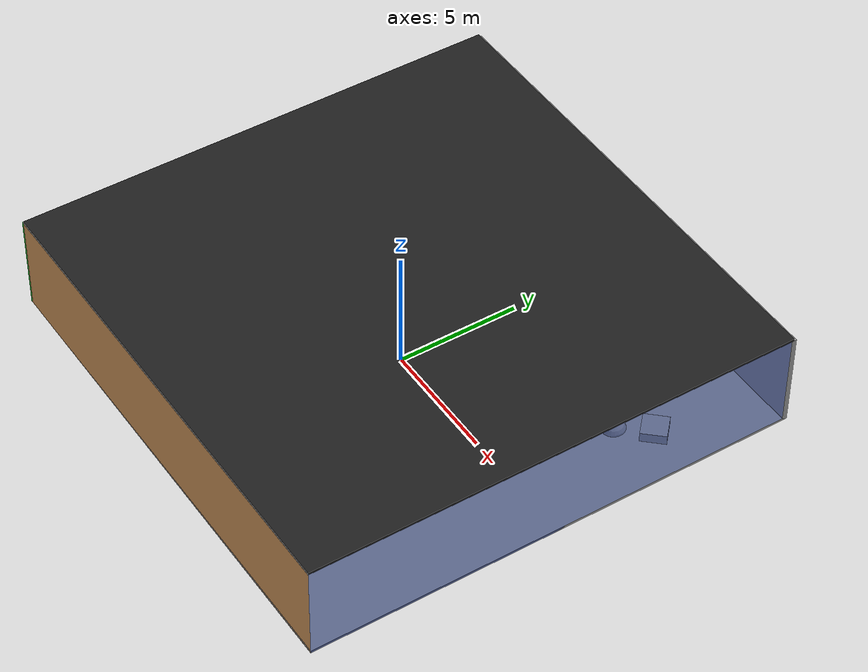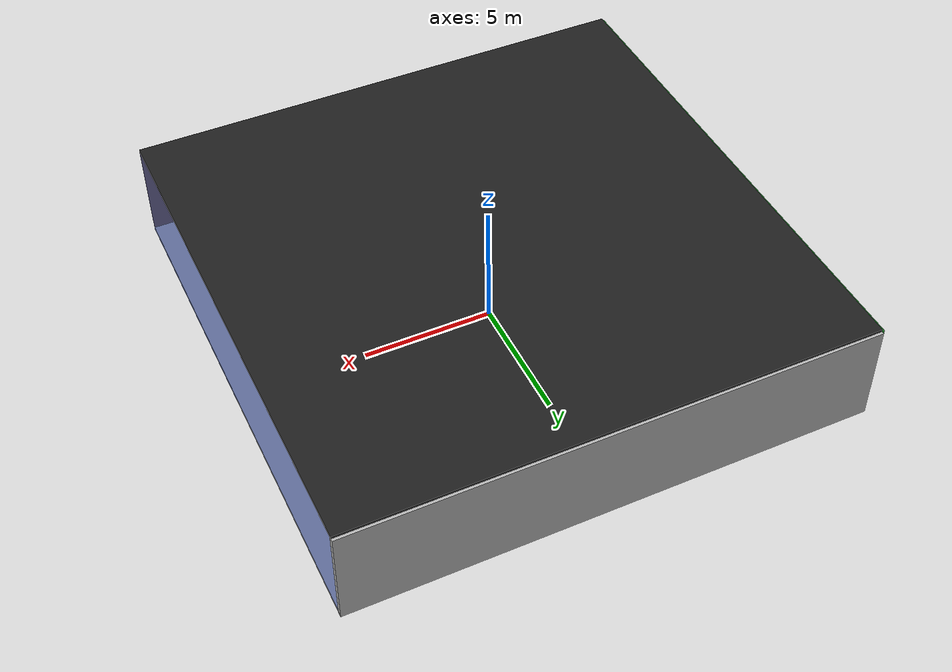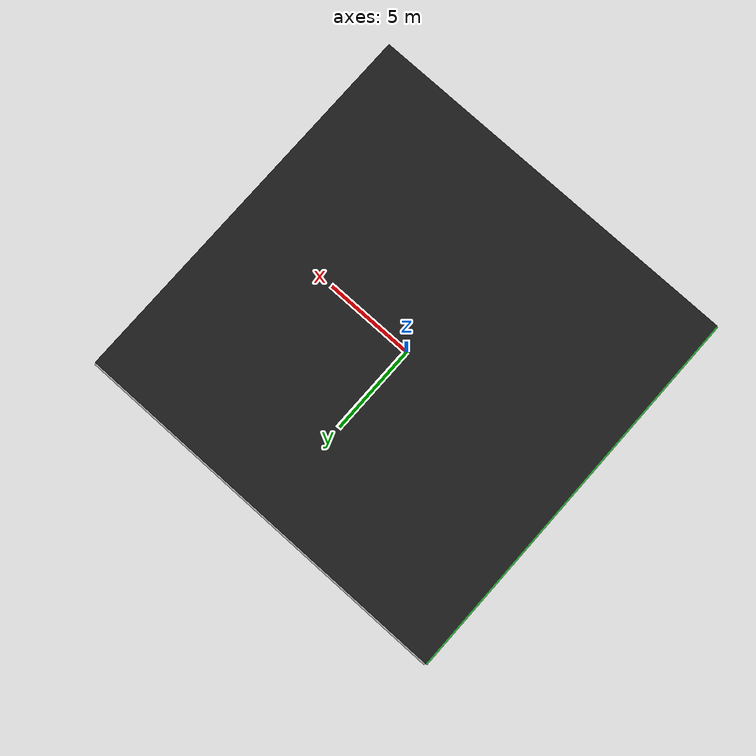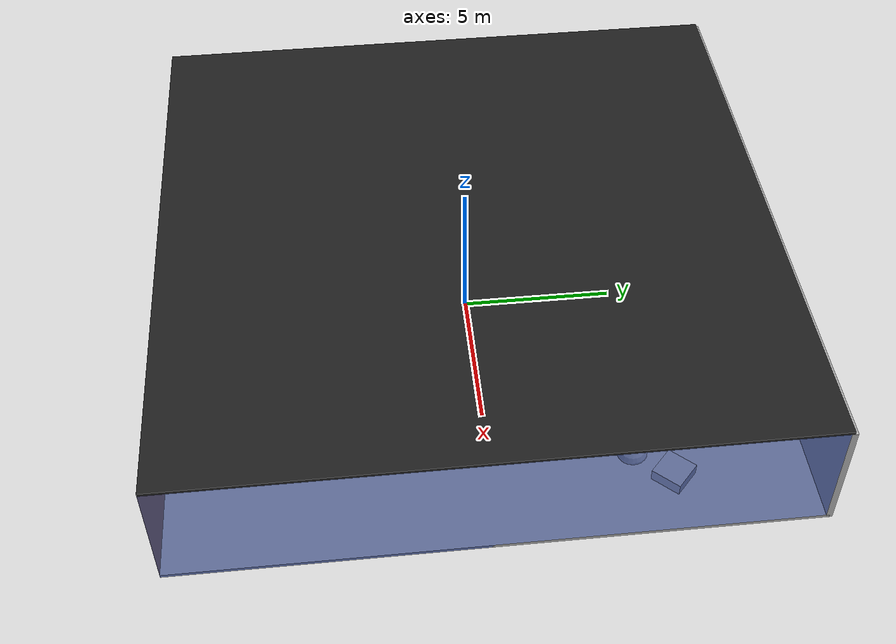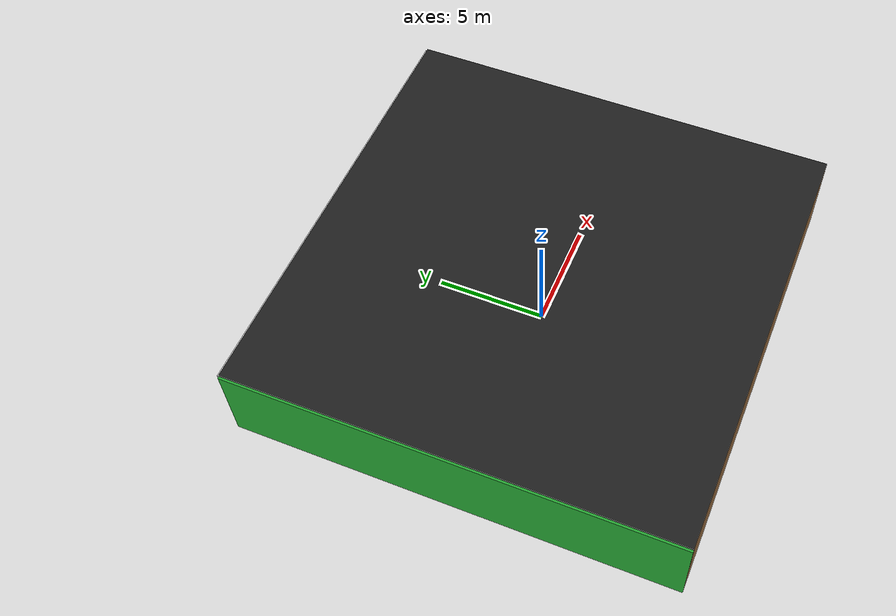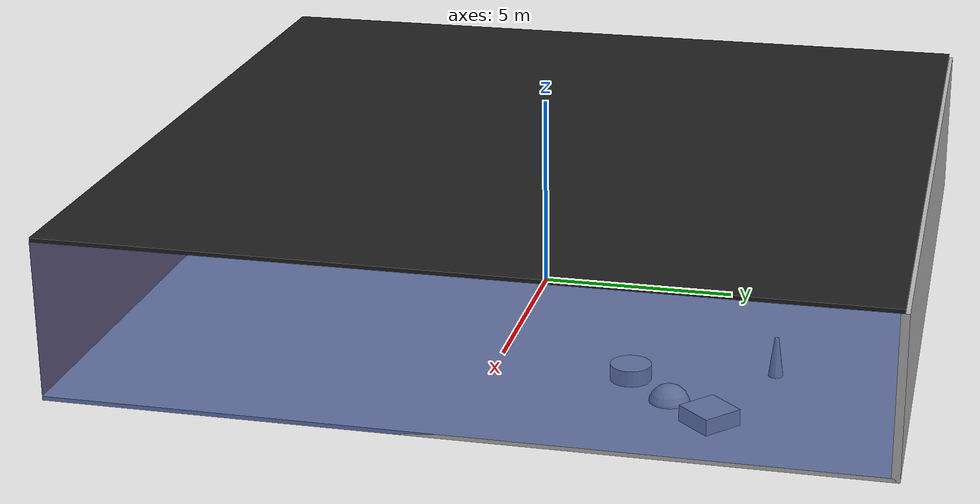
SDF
<sdf version="1.4">
 <world name="default">
  <physics type="ode">
   <max_step_size>0.001</max_step_size>
   <real_time_factor>1</real_time_factor>
   <real_time_update_rate>1000</real_time_update_rate>
   <gravity>0 0 -9.8</gravity>
  </physics>
  <scene><ambient>0.4 0.4 0.4 1</ambient><background>0.7 0.7 0.7 1</background><shadows>1</shadows></scene>
  <model name="Surrounding">
   <static>1</static>
   <link name="Ceiling">
    <collision name="Ceiling_Collision"><geometry><box><size>20 20 0.1</size></box></geometry></collision>
    <visual name="Ceiling_Visual">
     <geometry><box><size>20 20 0.1</size></box></geometry>
     <material>
      <script><uri>file://media/materials/scripts/gazebo.material</uri><name>Gazebo/FlatBlack</name></script>
     </material>
    </visual>
    <pose>0 0 4.05 0 0 0</pose>
   </link>
   <link name="Wall_South">
    <collision name="Wall_South_Collision">
     <geometry><box><size>20 0 4</size></box></geometry>
     <pose>0 0 2 0 -0 0</pose>
    </collision>
    <visual name="Wall_South_Visual">
     <pose>0 0 2 0 -0 0</pose>
     <geometry><box><size>20 0 4</size></box></geometry>
     <material>
      <script><uri>file://media/materials/scripts/gazebo.material</uri><name>Gazebo/WoodPallet</name></script>
     </material>
    </visual>
    <velocity_decay><linear>0</linear><angular>0</angular></velocity_decay>
    <pose>0 -10 0 0 -0 0</pose>
   </link>
   <link name="Wall_East">
    <collision name="Wall_21_Collision">
     <geometry><box><size>20 0 4</size></box></geometry>
     <pose>0 0 2 0 -0 0</pose>
    </collision>
    <visual name="Wall_21_Visual">
     <pose>0 0 2 0 -0 0</pose>
     <geometry><box><size>20 0 4</size></box></geometry>
     <material>
      <script><uri>file://media/materials/scripts/gazebo.material</uri><name>Gazebo/BlueTransparent</name></script>
     </material>
    </visual>
    <velocity_decay><linear>0</linear><angular>0</angular></velocity_decay>
    <pose>10 0 0 0 -0 1.5708</pose>
   </link>
   <link name="Wall_North">
    <collision name="Wall_22_Collision">
     <geometry><box><size>20 0.2 4</size></box></geometry>
     <pose>0 0 2 0 -0 0</pose>
    </collision>
    <visual name="Wall_22_Visual">
     <pose>0 0 2 0 -0 0</pose>
     <geometry><box><size>20 0.2 4</size></box></geometry>
     <material>
      <script><uri>file://media/materials/scripts/gazebo.material</uri><name>Gazebo/LightOn</name></script>
     </material>
    </visual>
    <velocity_decay><linear>0</linear><angular>0</angular></velocity_decay>
    <pose>0 10 0 0 -0 0</pose>
   </link>
   <link name="Wall_West">
    <collision name="Wall_23_Collision">
     <geometry><box><size>20 0.2 4</size></box></geometry>
     <pose>0 0 2 0 -0 0</pose>
    </collision>
    <visual name="Wall_23_Visual">
     <pose>0 0 2 0 -0 0</pose>
     <geometry><box><size>20 0.2 4</size></box></geometry>
     <material>
      <script><uri>file://media/materials/scripts/gazebo.material</uri><name>Gazebo/Green</name></script>
     </material>
    </visual>
    <velocity_decay><linear>0</linear><angular>0</angular></velocity_decay>
    <pose>-10 0 0 0 0 -1.5708</pose>
   </link>
   <link name="Ground_link">
    <collision name="collision">
     <pose>0 0 .05 0 -0 0</pose>
     <geometry><box><size>20 20 0.1</size></box></geometry>
    </collision>
    <visual name="visual">
     <pose>0 0 .05 0 -0 0</pose>
     <geometry><box><size>20 20 0.1</size></box></geometry>
     <material>
      <script><uri>file://media/materials/scripts/gazebo.material</uri><name>Gazebo/PioneerBody</name></script>
     </material>
    </visual>
   </link>
   <static>1</static>
  </model>
  <spherical_coordinates>
   <surface_model>EARTH_WGS84</surface_model>
   <latitude_deg>0</latitude_deg>
   <longitude_deg>0</longitude_deg>
   <elevation>0</elevation>
   <heading_deg>0</heading_deg>
  </spherical_coordinates>
  <light name="lightball_0" type="diffuse">
   <diffuse>0.8 0.8 0.8 1</diffuse>
   <specular>0.2 0.2 0.2 1</specular>
   <attenuation>
    <range>100</range>
    <constant>0.7</constant>
    <linear>0.01</linear>
    <quadratic>0.001</quadratic>
   </attenuation>
   <direction>-0.5 0.1 -0.9</direction>
   <pose>-7.69319599687 -1.09563265744 3.21627281201 0 0 0</pose>
  </light>
  <light name="lightball_1" type="diffuse">
   <diffuse>0.8 0.8 0.8 1</diffuse>
   <specular>0.2 0.2 0.2 1</specular>
   <attenuation>
    <range>100</range>
    <constant>0.7</constant>
    <linear>0.01</linear>
    <quadratic>0.001</quadratic>
   </attenuation>
   <direction>-0.5 0.1 -0.9</direction>
   <pose>-5.134424482 0.368083861356 2.30908101086 0 0 0</pose>
  </light>
  <light name="lightball_2" type="diffuse">
   <diffuse>0.8 0.8 0.8 1</diffuse>
   <specular>0.2 0.2 0.2 1</specular>
   <attenuation>
    <range>100</range>
    <constant>0.7</constant>
    <linear>0.01</linear>
    <quadratic>0.001</quadratic>
   </attenuation>
   <direction>-0.5 0.1 -0.9</direction>
   <pose>8.51606132221 -2.6992071031 2.5530080985 0 0 0</pose>
  </light>
  <light name="lightball_3" type="diffuse">
   <diffuse>0.8 0.8 0.8 1</diffuse>
   <specular>0.2 0.2 0.2 1</specular>
   <attenuation>
    <range>100</range>
    <constant>0.7</constant>
    <linear>0.01</linear>
    <quadratic>0.001</quadratic>
   </attenuation>
   <direction>-0.5 0.1 -0.9</direction>
   <pose>6.89909385507 3.92125737187 1.72063905215 0 0 0</pose>
  </light>
  <light name="lightball_4" type="diffuse">
   <diffuse>0.8 0.8 0.8 1</diffuse>
   <specular>0.2 0.2 0.2 1</specular>
   <attenuation>
    <range>100</range>
    <constant>0.7</constant>
    <linear>0.01</linear>
    <quadratic>0.001</quadratic>
   </attenuation>
   <direction>-0.5 0.1 -0.9</direction>
   <pose>9.58924402107 -5.67605847737 2.54303477965 0 0 0</pose>
  </light>
  <light name="lightball_5" type="diffuse">
   <diffuse>0.8 0.8 0.8 1</diffuse>
   <specular>0.2 0.2 0.2 1</specular>
   <attenuation>
    <range>100</range>
    <constant>0.7</constant>
    <linear>0.01</linear>
    <quadratic>0.001</quadratic>
   </attenuation>
   <direction>-0.5 0.1 -0.9</direction>
   <pose>1.3787296954 2.30390684322 0.586108913143 0 0 0</pose>
  </light>
  <light name="lightball_6" type="diffuse">
   <diffuse>0.8 0.8 0.8 1</diffuse>
   <specular>0.2 0.2 0.2 1</specular>
   <attenuation>
    <range>100</range>
    <constant>0.7</constant>
    <linear>0.01</linear>
    <quadratic>0.001</quadratic>
   </attenuation>
   <direction>-0.5 0.1 -0.9</direction>
   <pose>-0.0712329196664 -6.59106294695 1.77549662915 0 0 0</pose>
  </light>
  <light name="lightball_7" type="diffuse">
   <diffuse>0.8 0.8 0.8 1</diffuse>
   <specular>0.2 0.2 0.2 1</specular>
   <attenuation>
    <range>100</range>
    <constant>0.7</constant>
    <linear>0.01</linear>
    <quadratic>0.001</quadratic>
   </attenuation>
   <direction>-0.5 0.1 -0.9</direction>
   <pose>1.88881168895 6.72122154693 3.52838865946 0 0 0</pose>
  </light>
  <light name="lightball_8" type="diffuse">
   <diffuse>0.8 0.8 0.8 1</diffuse>
   <specular>0.2 0.2 0.2 1</specular>
   <attenuation>
    <range>100</range>
    <constant>0.7</constant>
    <linear>0.01</linear>
    <quadratic>0.001</quadratic>
   </attenuation>
   <direction>-0.5 0.1 -0.9</direction>
   <pose>3.82792711934 -0.239026892308 3.70396715326 0 0 0</pose>
  </light>
  <light name="lightball_9" type="diffuse">
   <diffuse>0.8 0.8 0.8 1</diffuse>
   <specular>0.2 0.2 0.2 1</specular>
   <attenuation>
    <range>100</range>
    <constant>0.7</constant>
    <linear>0.01</linear>
    <quadratic>0.001</quadratic>
   </attenuation>
   <direction>-0.5 0.1 -0.9</direction>
   <pose>-0.789398160854 -5.10985774398 1.91639739948 0 0 0</pose>
  </light>
  <light name="lightball_10" type="diffuse">
   <diffuse>0.8 0.8 0.8 1</diffuse>
   <specular>0.2 0.2 0.2 1</specular>
   <attenuation>
    <range>100</range>
    <constant>0.7</constant>
    <linear>0.01</linear>
    <quadratic>0.001</quadratic>
   </attenuation>
   <direction>-0.5 0.1 -0.9</direction>
   <pose>9.85109694923 2.02443915458 0.776130265026 0 0 0</pose>
  </light>
  <include>
   <uri>model://robocup_3Dsim_goal</uri>
   <pose>-6.9142121246 4.36345886665 0 0 0 1.71413114601</pose>
  </include>
  <include><uri>model://table</uri><pose>-1.38672697992 4.35657432367 0 0 0 0.205190981123</pose></include>
  <include>
   <uri>model://construction_cone</uri>
   <pose>5.12005013971 6.78890810489 0 0 0 0.65356816112</pose>
  </include>
  <include>
   <uri>model://textured_shapes</uri>
   <pose>7.06244310335 4.50853709582 0 0 0 2.39588948136</pose>
  </include>
 </world>
</sdf>

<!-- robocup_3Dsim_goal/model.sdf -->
<sdf version="1.5">
  <model name="robocup_3d_goal">
    <static>true</static>
    <link name="left_post">
      <pose>0 1.05 0.45 0 0 0</pose>
      <collision name="collision">
        <geometry>
          <cylinder>
            <radius>0.05</radius>
            <length>0.9</length>
          </cylinder>
        </geometry>
      </collision>
      <visual name="visual">
        <geometry>
          <cylinder>
            <radius>0.05</radius>
            <length>0.9</length>
          </cylinder>
        </geometry>
        <material>
          <script>
            <uri>file://media/materials/scripts/gazebo.material</uri>
            <name>Gazebo/ZincYellow</name>
          </script>
        </material>
      </visual>
    </link>
    <link name="left_support_horiz_lower">
      <pose>0.30 1.05 0.01 0 0 0</pose>
      <collision name="collision">
        <geometry>
          <box>
            <size>0.50 0.02 0.02</size>
          </box>
        </geometry>
      </collision>
      <visual name="visual">
        <geometry>
          <box>
            <size>0.50 0.02 0.02</size>
          </box>
        </geometry>
        <material>
          <script>
            <uri>file://media/materials/scripts/gazebo.material</uri>
            <name>Gazebo/White</name>
          </script>
        </material>
      </visual>
    </link>
    <link name="left_support_horiz_upper">
      <pose>0.30 1.05 0.79 0 0 0</pose>
      <collision name="collision">
        <geometry>
          <box>
            <size>0.50 0.02 0.02</size>
          </box>
        </geometry>
      </collision>
      <visual name="visual">
        <geometry>
          <box>
            <size>0.50 0.02 0.02</size>
          </box>
        </geometry>
        <material>
          <script>
            <uri>file://media/materials/scripts/gazebo.material</uri>
            <name>Gazebo/White</name>
          </script>
        </material>
      </visual>
    </link>
    <link name="left_support_vertical">
      <pose>0.56 1.05 0.4 0 1.5708 0</pose>
      <collision name="collision">
        <geometry>
          <box>
            <size>0.80 0.02 0.02</size>
          </box>
        </geometry>
      </collision>
      <visual name="visual">
        <geometry>
          <box>
            <size>0.80 0.02 0.02</size>
          </box>
        </geometry>
        <material>
          <script>
            <uri>file://media/materials/scripts/gazebo.material</uri>
            <name>Gazebo/White</name>
          </script>
        </material>
      </visual>
    </link>
    <link name="right_support_horiz_lower">
      <pose>0.30 -1.05 0.01 0 0 0</pose>
      <collision name="collision">
        <geometry>
          <box>
            <size>0.50 0.02 0.02</size>
          </box>
        </geometry>
      </collision>
      <visual name="visual">
        <geometry>
          <box>
            <size>0.50 0.02 0.02</size>
          </box>
        </geometry>
        <material>
          <script>
            <uri>file://media/materials/scripts/gazebo.material</uri>
            <name>Gazebo/White</name>
          </script>
        </material>
      </visual>
    </link>
    <link name="right_support_horiz_upper">
      <pose>0.30 -1.05 0.79 0 0 0</pose>
      <collision name="collision">
        <geometry>
          <box>
            <size>0.50 0.02 0.02</size>
          </box>
        </geometry>
      </collision>
      <visual name="visual">
        <geometry>
          <box>
            <size>0.50 0.02 0.02</size>
          </box>
        </geometry>
        <material>
          <script>
            <uri>file://media/materials/scripts/gazebo.material</uri>
            <name>Gazebo/White</name>
          </script>
        </material>
      </visual>
    </link>
    <link name="right_support_vertical">
      <pose>0.56 -1.05 0.4 0 1.5708 0</pose>
      <collision name="collision">
        <geometry>
          <box>
            <size>0.80 0.02 0.02</size>
          </box>
        </geometry>
      </collision>
      <visual name="visual">
        <geometry>
          <box>
            <size>0.80 0.02 0.02</size>
          </box>
        </geometry>
        <material>
          <script>
            <uri>file://media/materials/scripts/gazebo.material</uri>
            <name>Gazebo/White</name>
          </script>
        </material>
      </visual>
    </link>
    <link name="center_support_horiz_lower">
      <pose>0.56 0 0.01 0 1.5708 0</pose>
      <collision name="collision">
        <geometry>
          <box>
            <size>0.02 2.08 0.02</size>
          </box>
        </geometry>
      </collision>
      <visual name="visual">
        <geometry>
          <box>
            <size>0.02 2.08 0.02</size>
          </box>
        </geometry>
        <material>
          <script>
            <uri>file://media/materials/scripts/gazebo.material</uri>
            <name>Gazebo/White</name>
          </script>
        </material>
      </visual>
    </link>
    <link name="center_support_horiz_upper">
      <pose>0.56 0 0.79 0 1.5708 0</pose>
      <collision name="collision">
        <geometry>
          <box>
            <size>0.02 2.08 0.02</size>
          </box>
        </geometry>
      </collision>
      <visual name="visual">
        <geometry>
          <box>
            <size>0.02 2.08 0.02</size>
          </box>
        </geometry>
        <material>
          <script>
            <uri>file://media/materials/scripts/gazebo.material</uri>
            <name>Gazebo/White</name>
          </script>
        </material>
      </visual>
    </link>
    <link name="right_post">
      <pose>0 -1.05 0.45 0 0 0</pose>
      <collision name="collision">
        <geometry>
          <cylinder>
            <radius>0.05</radius>
            <length>0.9</length>
          </cylinder>
        </geometry>
      </collision>
      <visual name="visual">
        <geometry>
          <cylinder>
            <radius>0.05</radius>
            <length>0.9</length>
          </cylinder>
        </geometry>
        <material>
          <script>
            <uri>file://media/materials/scripts/gazebo.material</uri>
            <name>Gazebo/ZincYellow</name>
          </script>
        </material>
      </visual>
    </link>
    <link name="crossbar">
      <pose>0 0 0.85 1.57 1.57 0</pose>
      <collision name="collision">
        <geometry>
          <cylinder>
            <radius>0.05</radius>
            <length>2.0</length>
          </cylinder>
        </geometry>
      </collision>
      <visual name="visual">
        <geometry>
          <cylinder>
            <radius>0.05</radius>
            <length>2.0</length>
          </cylinder>
        </geometry>
        <material>
          <script>
            <uri>file://media/materials/scripts/gazebo.material</uri>
            <name>Gazebo/ZincYellow</name>
          </script>
        </material>
      </visual>
    </link>
    <link name="center_net">
      <pose>0.56 0 0.40 0 0 0</pose>
      <collision name="collision">
        <geometry>
          <box>
            <size>0.01 2.1 0.80</size>
          </box>
        </geometry>
      </collision>
      <visual name="visual">
        <geometry>
          <box>
            <size>0.01 2.1 0.80</size>
          </box>
        </geometry>
        <material>
          <script>
            <uri>model://../model_source/models/robocup09_spl_field/materials/scripts/</uri>
            <uri>model://../model_source/models/robocup09_spl_field/materials/textures/</uri>
            <name>RoboCup/Net</name>
          </script>
        </material>
      </visual>
    </link>
    <link name="left_net">
      <pose>0.30 1.05 0.40 0 0 0</pose>
      <collision name="collision">
        <geometry>
          <box>
            <size>0.50 0.01 0.76</size>
          </box>
        </geometry>
      </collision>
      <visual name="visual">
        <geometry>
          <box>
            <size>0.50 0.01 0.76</size>
          </box>
        </geometry>
        <material>
          <script>
            <uri>model://../model_source/models/robocup09_spl_field/materials/scripts/</uri>
            <uri>model://../model_source/models/robocup09_spl_field/materials/textures/</uri>
            <name>RoboCup/Net</name>
          </script>
        </material>
      </visual>
    </link>
    <link name="right_net">
      <pose>0.30 -1.05 0.40 0 0 0</pose>
      <collision name="collision">
        <geometry>
          <box>
            <size>0.50 0.01 0.76</size>
          </box>
        </geometry>
      </collision>
      <visual name="visual">
        <geometry>
          <box>
            <size>0.50 0.01 0.76</size>
          </box>
        </geometry>
        <material>
          <script>
            <uri>model://../model_source/models/robocup09_spl_field/materials/scripts/</uri>
            <uri>model://../model_source/models/robocup09_spl_field/materials/textures/</uri>
            <name>RoboCup/Net</name>
          </script>
        </material>
      </visual>
    </link>
  </model>
</sdf>

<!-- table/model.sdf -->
<sdf version="1.5">
  <model name="table">
    <static>true</static>
    <link name="link">
      <collision name="surface">
        <pose>0 0 1.0 0 0 0</pose>
        <geometry>
          <box>
            <size>1.5 0.8 0.03</size>
          </box>
        </geometry>
        <surface>
          <friction>
            <ode>
              <mu>0.6</mu>
              <mu2>0.6</mu2>
            </ode>
          </friction>
        </surface>
      </collision>
      <visual name="visual1">
        <pose>0 0 1.0 0 0 0</pose>
        <geometry>
          <box>
            <size>1.5 0.8 0.03</size>
          </box>
        </geometry>
        <material>
          <script>
            <uri>model://media/materials/scripts/gazebo.material</uri>
            <name>Gazebo/Wood</name>
          </script>
        </material>
      </visual>
      <collision name="front_left_leg">
        <pose>0.68 0.38 0.5 0 0 0</pose>
        <geometry>
          <cylinder>
            <radius>0.02</radius>
            <length>1.0</length>
          </cylinder>
        </geometry>
      </collision>
      <visual name="front_left_leg">
        <pose>0.68 0.38 0.5 0 0 0</pose>
        <geometry>
          <cylinder>
            <radius>0.02</radius>
            <length>1.0</length>
          </cylinder>
        </geometry>
        <material>
          <script>
            <uri>model://media/materials/scripts/gazebo.material</uri>
            <name>Gazebo/Grey</name>
          </script>
        </material>
      </visual>
      <collision name="front_right_leg">
        <pose>0.68 -0.38 0.5 0 0 0</pose>
        <geometry>
          <cylinder>
            <radius>0.02</radius>
            <length>1.0</length>
          </cylinder>
        </geometry>
      </collision>
      <visual name="front_right_leg">
        <pose>0.68 -0.38 0.5 0 0 0</pose>
        <geometry>
          <cylinder>
            <radius>0.02</radius>
            <length>1.0</length>
          </cylinder>
        </geometry>
        <material>
          <script>
            <uri>model://media/materials/scripts/gazebo.material</uri>
            <name>Gazebo/Grey</name>
          </script>
        </material>
      </visual>
      <collision name="back_right_leg">
        <pose>-0.68 -0.38 0.5 0 0 0</pose>
        <geometry>
          <cylinder>
            <radius>0.02</radius>
            <length>1.0</length>
          </cylinder>
        </geometry>
      </collision>
      <visual name="back_right_leg">
        <pose>-0.68 -0.38 0.5 0 0 0</pose>
        <geometry>
          <cylinder>
            <radius>0.02</radius>
            <length>1.0</length>
          </cylinder>
        </geometry>
        <material>
          <script>
            <uri>model://media/materials/scripts/gazebo.material</uri>
            <name>Gazebo/Grey</name>
          </script>
        </material>
      </visual>
      <collision name="back_left_leg">
        <pose>-0.68 0.38 0.5 0 0 0</pose>
        <geometry>
          <cylinder>
            <radius>0.02</radius>
            <length>1.0</length>
          </cylinder>
        </geometry>
      </collision>
      <visual name="back_left_leg">
        <pose>-0.68 0.38 0.5 0 0 0</pose>
        <geometry>
          <cylinder>
            <radius>0.02</radius>
            <length>1.0</length>
          </cylinder>
        </geometry>
        <material>
          <script>
            <uri>model://media/materials/scripts/gazebo.material</uri>
            <name>Gazebo/Grey</name>
          </script>
        </material>
      </visual>
    </link>
  </model>
</sdf>

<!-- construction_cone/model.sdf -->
<sdf version="1.5">
  <model name="Construction Cone">
    <link name="link">
      <collision name="collision">
        <geometry>
          <mesh>
            <scale>10 10 10</scale>
            <uri>file://isr-testbed/construction_cone/meshes/construction_cone.dae</uri>
          </mesh>
        </geometry>
      </collision>
      <visual name="visual">
        <geometry>
          <mesh>
            <scale>10 10 10</scale>
            <uri>file://isr-testbed/construction_cone/meshes/construction_cone.dae</uri>
          </mesh>
        </geometry>
      </visual>
    </link>
  </model>
</sdf>

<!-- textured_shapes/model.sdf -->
<sdf version="1.6">
  <model name="textured_shapes">
    <pose>0 0 0.5 0 0 0</pose>
    <link name="box">
      <pose>0 -1.5 0 0 0 0</pose>
      <collision name="collision">
        <geometry>
          <box>
            <size>1 1 1</size>
          </box>
        </geometry>
      </collision>
      <visual name="visual">
        <geometry>
          <box>
            <size>1 1 1</size>
          </box>
        </geometry>
        <material>
          <script>
            <uri>model://../model_source/models/textured_shapes/materials/scripts</uri>
            <uri>model://../model_source/models/textured_shapes/materials/textures</uri>
            <name>TexturedShape/Squares</name>
          </script>
        </material>
      </visual>
    </link>
    <link name="sphere">
      <collision name="collision">
        <geometry>
          <sphere>
            <radius>0.5</radius>
          </sphere>
        </geometry>
      </collision>
      <visual name="visual">
        <geometry>
          <sphere>
            <radius>0.5</radius>
          </sphere>
        </geometry>
        <material>
          <script>
            <uri>model://../model_source/models/textured_shapes/materials/scripts</uri>
            <uri>model://../model_source/models/textured_shapes/materials/textures</uri>
            <name>TexturedShape/Squares</name>
          </script>
        </material>
      </visual>
    </link>
    <link name="cylinder">
      <pose>0 1.5 0 0 0 0</pose>
      <collision name="collision">
        <geometry>
          <cylinder>
            <radius>0.5</radius>
            <length>1</length>
          </cylinder>
        </geometry>
      </collision>
      <visual name="visual">
        <geometry>
          <cylinder>
            <radius>0.5</radius>
            <length>1</length>
          </cylinder>
        </geometry>
        <material>
          <script>
            <uri>model://../model_source/models/textured_shapes/materials/scripts</uri>
            <uri>model://../model_source/models/textured_shapes/materials/textures</uri>
            <name>TexturedShape/Squares</name>
          </script>
        </material>
      </visual>
    </link>
  </model>
</sdf>
